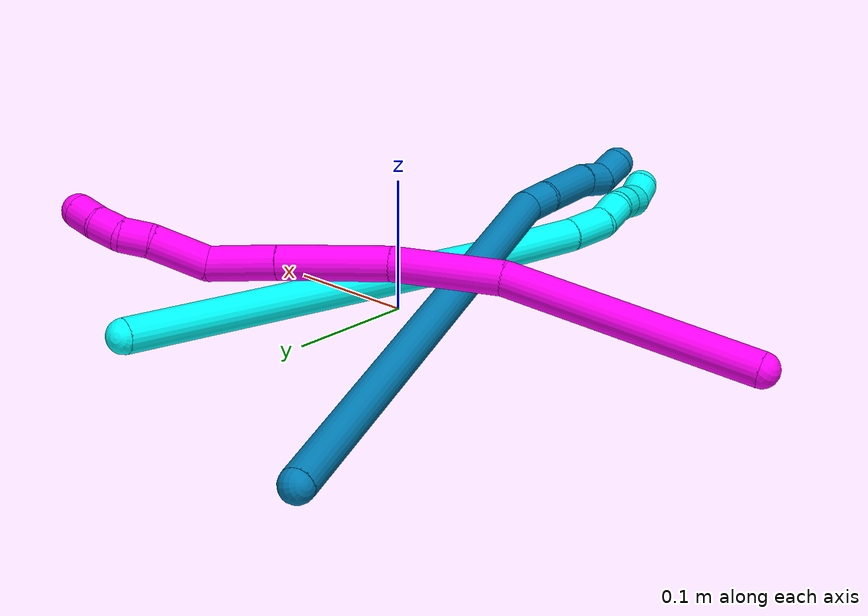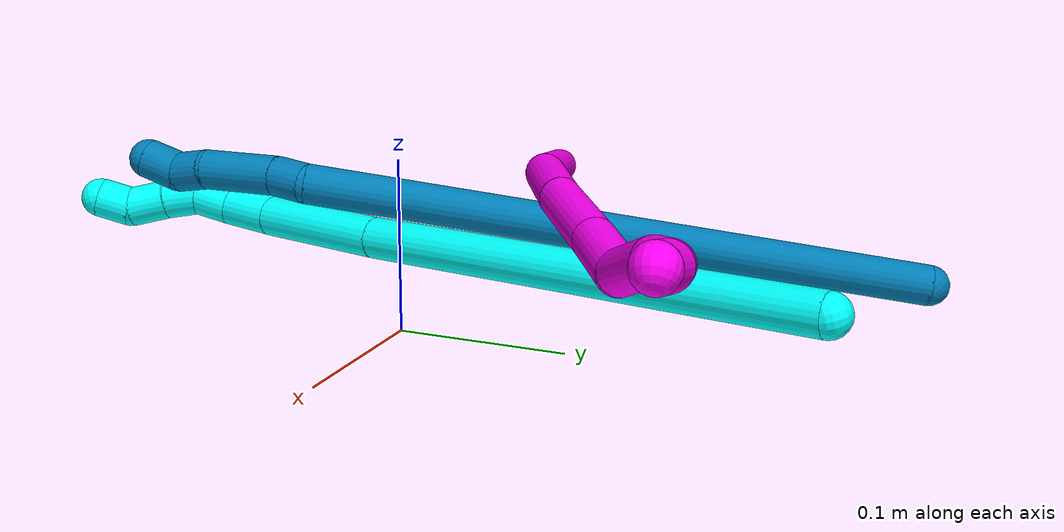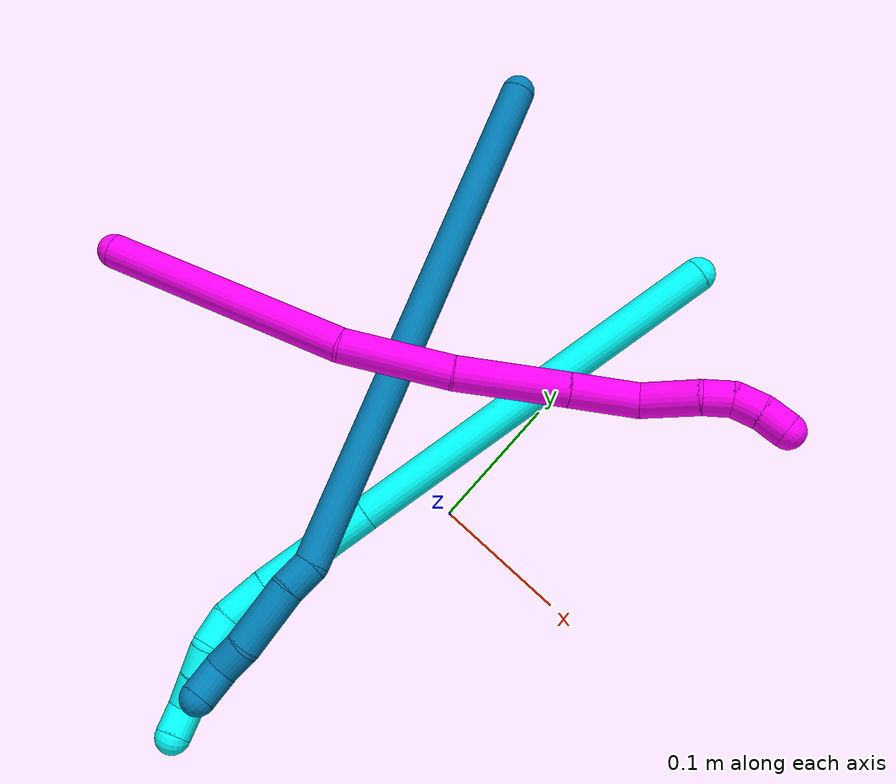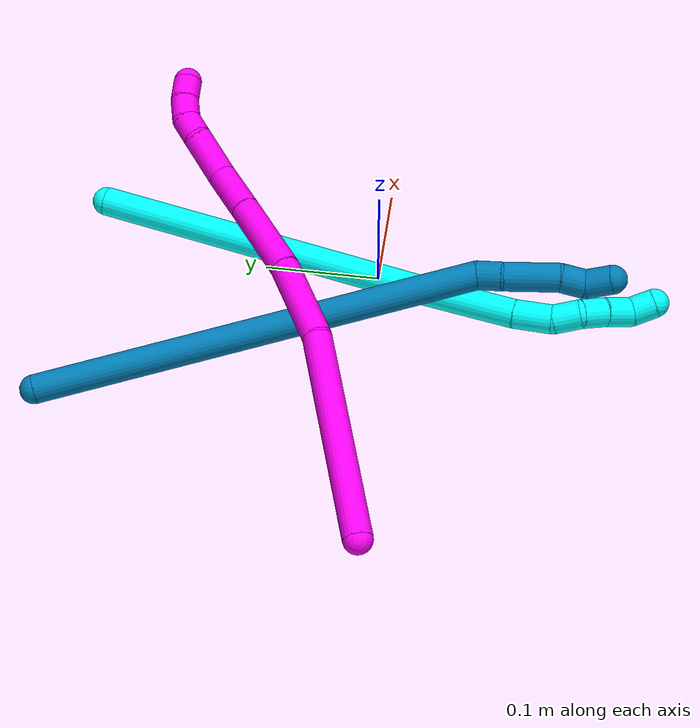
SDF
<sdf version="1.7">
 <world name="default">
  <model name="photoneo_s_sensor">
   <static>1</static>
   <pose>0 0 2 1.57079 1.57079 3.14159</pose>
   <link name="link">
    <inertial><mass>0.1</mass></inertial>
    <sensor name="sensor" type="depth">
     <update_rate>30</update_rate>
     <camera>
      <horizontal_fov>1.22</horizontal_fov>
      <image><width>1920</width><height>1200</height><format>B8G8R8</format></image>
      <clip><near>0.1</near><far>2</far></clip>
      <depth_camera><output>points</output></depth_camera>
     </camera>
     <plugin name="camera_plugin" filename="libgazebo_ros_depth_camera.so">
      <baseline>0.2</baseline>
      <alwaysOn>1</alwaysOn>
      <updateRate>0.0</updateRate>
      <cameraName>camera_ir</cameraName>
      <imageTopicName>/camera/color/image_raw</imageTopicName>
      <cameraInfoTopicName>/camera/color/camera_info</cameraInfoTopicName>
      <depthImageTopicName>/camera/depth/image_raw</depthImageTopicName>
      <depthImageCameraInfoTopicName>/camera/depth/camera_info</depthImageCameraInfoTopicName>
      <pointCloudTopicName>/camera/depth/points</pointCloudTopicName>
      <frameName>fr_optical</frameName>
      <pointCloudCutoff>0.1</pointCloudCutoff>
      <pointCloudCutoffMax>2.0</pointCloudCutoffMax>
      <distortionK1>0</distortionK1>
      <distortionK2>0</distortionK2>
      <distortionK3>0</distortionK3>
      <distortionT1>0</distortionT1>
      <distortionT2>0</distortionT2>
      <CxPrime>0</CxPrime>
      <Cx>0</Cx>
      <Cy>0</Cy>
      <focalLength>0</focalLength>
      <hackBaseline>0</hackBaseline>
     </plugin>
    </sensor>
   </link>
  </model>
  <model name="bin">
   <static>1</static>
   <link name="bottom">
    <collision name="collision-bottom">
     <pose>0 0 -0.01 0 -0 0</pose>
     <geometry><box><size>0.8 0.6 0.02</size></box></geometry>
     <surface>
      <friction><ode><mu>100</mu><mu2>100</mu2></ode></friction>
      <contact><collide_bitmask>65535</collide_bitmask></contact>
     </surface>
    </collision>
   </link>
   <link name="west_wall">
    <collision name="collision-west_wall">
     <pose>-0.41 0 0.1 0 -0 0</pose>
     <geometry><box><size>0.02 0.6 0.2</size></box></geometry>
     <surface>
      <friction><ode><mu>100</mu><mu2>100</mu2></ode></friction>
      <contact><collide_bitmask>65535</collide_bitmask></contact>
     </surface>
    </collision>
   </link>
   <link name="east_wall">
    <collision name="collision-east_wall">
     <pose>0.41 0 0.1 0 -0 0</pose>
     <geometry><box><size>0.02 0.6 0.2</size></box></geometry>
     <surface>
      <friction><ode><mu>100</mu><mu2>100</mu2></ode></friction>
      <contact><collide_bitmask>65535</collide_bitmask></contact>
     </surface>
    </collision>
   </link>
   <link name="south_wall">
    <collision name="collision-south_wall">
     <pose>0 -0.31 0.1 0 -0 0</pose>
     <geometry><box><size>0.8 0.02 0.2</size></box></geometry>
     <surface>
      <friction><ode><mu>100</mu><mu2>100</mu2></ode></friction>
      <contact><collide_bitmask>65535</collide_bitmask></contact>
     </surface>
    </collision>
   </link>
   <link name="north_wall">
    <collision name="collision-north_wall">
     <pose>0 0.31 0.1 0 -0 0</pose>
     <geometry><box><size>0.8 0.02 0.2</size></box></geometry>
     <surface>
      <friction><ode><mu>100</mu><mu2>100</mu2></ode></friction>
      <contact><collide_bitmask>65535</collide_bitmask></contact>
     </surface>
    </collision>
   </link>
  </model>
  <model name="3">
   <static>0</static>
   <link name="3">
    <collision name="collision-cylinder-e_1_1_4">
     <pose>-0.023405 -0.08743 -0.113588 2.48559 -0.161854 -0.467945</pose>
     <geometry><cylinder><radius>0.0125</radius><length>0.290475</length></cylinder></geometry>
     <surface>
      <friction><ode><mu>1.16</mu><mu2>1.16</mu2><slip1>0</slip1><slip2>0</slip2></ode></friction>
      <contact><ode><kp>1e+06</kp><kd>1</kd><max_vel>0</max_vel><min_depth>0.001</min_depth></ode></contact>
     </surface>
    </collision>
    <visual name="visual-cylinder-e_1_1_4">
     <pose>-0.023405 -0.08743 -0.113588 2.48559 -0.161854 -0.467945</pose>
     <geometry><cylinder><radius>0.0125</radius><length>0.290475</length></cylinder></geometry>
     <material><ambient>0.003922 1 0.996078 1</ambient></material>
    </visual>
    <collision name="collision-cylinder-e_2_4_5">
     <pose>-0.05247 -0.201337 -0.260345 2.46792 -0.13259 -0.374742</pose>
     <geometry><cylinder><radius>0.0125</radius><length>0.085634</length></cylinder></geometry>
     <surface>
      <friction><ode><mu>1.16</mu><mu2>1.16</mu2><slip1>0</slip1><slip2>0</slip2></ode></friction>
      <contact><ode><kp>1e+06</kp><kd>1</kd><max_vel>0</max_vel><min_depth>0.001</min_depth></ode></contact>
     </surface>
    </collision>
    <visual name="visual-cylinder-e_2_4_5">
     <pose>-0.05247 -0.201337 -0.260345 2.46792 -0.13259 -0.374742</pose>
     <geometry><cylinder><radius>0.0125</radius><length>0.085634</length></cylinder></geometry>
     <material><ambient>0.003922 1 0.996078 1</ambient></material>
    </visual>
    <collision name="collision-cylinder-e_3_5_6">
     <pose>-0.058652 -0.237866 -0.306812 2.49434 -0.031261 -0.093141</pose>
     <geometry><cylinder><radius>0.0125</radius><length>0.033354</length></cylinder></geometry>
     <surface>
      <friction><ode><mu>1.16</mu><mu2>1.16</mu2><slip1>0</slip1><slip2>0</slip2></ode></friction>
      <contact><ode><kp>1e+06</kp><kd>1</kd><max_vel>0</max_vel><min_depth>0.001</min_depth></ode></contact>
     </surface>
    </collision>
    <visual name="visual-cylinder-e_3_5_6">
     <pose>-0.058652 -0.237866 -0.306812 2.49434 -0.031261 -0.093141</pose>
     <geometry><cylinder><radius>0.0125</radius><length>0.033354</length></cylinder></geometry>
     <material><ambient>0.003922 1 0.996078 1</ambient></material>
    </visual>
    <collision name="collision-cylinder-e_4_6_7">
     <pose>-0.055808 -0.253355 -0.330146 2.64508 0.286675 1.03518</pose>
     <geometry><cylinder><radius>0.0125</radius><length>0.023803</length></cylinder></geometry>
     <surface>
      <friction><ode><mu>1.16</mu><mu2>1.16</mu2><slip1>0</slip1><slip2>0</slip2></ode></friction>
      <contact><ode><kp>1e+06</kp><kd>1</kd><max_vel>0</max_vel><min_depth>0.001</min_depth></ode></contact>
     </surface>
    </collision>
    <visual name="visual-cylinder-e_4_6_7">
     <pose>-0.055808 -0.253355 -0.330146 2.64508 0.286675 1.03518</pose>
     <geometry><cylinder><radius>0.0125</radius><length>0.023803</length></cylinder></geometry>
     <material><ambient>0.003922 1 0.996078 1</ambient></material>
    </visual>
    <collision name="collision-cylinder-e_5_7_8">
     <pose>-0.05172 -0.259961 -0.350797 3.032 0.067494 1.10347</pose>
     <geometry><cylinder><radius>0.0125</radius><length>0.021404</length></cylinder></geometry>
     <surface>
      <friction><ode><mu>1.16</mu><mu2>1.16</mu2><slip1>0</slip1><slip2>0</slip2></ode></friction>
      <contact><ode><kp>1e+06</kp><kd>1</kd><max_vel>0</max_vel><min_depth>0.001</min_depth></ode></contact>
     </surface>
    </collision>
    <visual name="visual-cylinder-e_5_7_8">
     <pose>-0.05172 -0.259961 -0.350797 3.032 0.067494 1.10347</pose>
     <geometry><cylinder><radius>0.0125</radius><length>0.021404</length></cylinder></geometry>
     <material><ambient>0.003922 1 0.996078 1</ambient></material>
    </visual>
    <collision name="collision-cylinder-e_6_8_9">
     <pose>-0.051099 -0.262057 -0.3735 3.06495 -0.008308 -0.215844</pose>
     <geometry><cylinder><radius>0.0125</radius><length>0.024252</length></cylinder></geometry>
     <surface>
      <friction><ode><mu>1.16</mu><mu2>1.16</mu2><slip1>0</slip1><slip2>0</slip2></ode></friction>
      <contact><ode><kp>1e+06</kp><kd>1</kd><max_vel>0</max_vel><min_depth>0.001</min_depth></ode></contact>
     </surface>
    </collision>
    <visual name="visual-cylinder-e_6_8_9">
     <pose>-0.051099 -0.262057 -0.3735 3.06495 -0.008308 -0.215844</pose>
     <geometry><cylinder><radius>0.0125</radius><length>0.024252</length></cylinder></geometry>
     <material><ambient>0.003922 1 0.996078 1</ambient></material>
    </visual>
    <collision name="collision-cylinder-e_7_9_2">
     <pose>-0.046868 -0.266534 -0.394518 2.76324 0.423628 1.68666</pose>
     <geometry><cylinder><radius>0.0125</radius><length>0.021079</length></cylinder></geometry>
     <surface>
      <friction><ode><mu>1.16</mu><mu2>1.16</mu2><slip1>0</slip1><slip2>0</slip2></ode></friction>
      <contact><ode><kp>1e+06</kp><kd>1</kd><max_vel>0</max_vel><min_depth>0.001</min_depth></ode></contact>
     </surface>
    </collision>
    <visual name="visual-cylinder-e_7_9_2">
     <pose>-0.046868 -0.266534 -0.394518 2.76324 0.423628 1.68666</pose>
     <geometry><cylinder><radius>0.0125</radius><length>0.021079</length></cylinder></geometry>
     <material><ambient>0.003922 1 0.996078 1</ambient></material>
    </visual>
    <collision name="collision-sphere-2">
     <pose>-0.042535 -0.270083 -0.403447 0 -0 0</pose>
     <geometry><sphere><radius>0.0125</radius></sphere></geometry>
     <surface>
      <friction><ode><mu>1.16</mu><mu2>1.16</mu2><slip1>0</slip1><slip2>0</slip2></ode></friction>
      <contact><ode><kp>1e+06</kp><kd>1</kd><max_vel>0</max_vel><min_depth>0.001</min_depth></ode></contact>
     </surface>
    </collision>
    <visual name="visual-sphere-2">
     <pose>-0.042535 -0.270083 -0.403447 0 -0 0</pose>
     <geometry><sphere><radius>0.0125</radius></sphere></geometry>
     <material><ambient>0.003922 1 0.996078 1</ambient></material>
    </visual>
    <collision name="collision-sphere-9">
     <pose>-0.0512 -0.262985 -0.38559 0 -0 0</pose>
     <geometry><sphere><radius>0.0125</radius></sphere></geometry>
     <surface>
      <friction><ode><mu>1.16</mu><mu2>1.16</mu2><slip1>0</slip1><slip2>0</slip2></ode></friction>
      <contact><ode><kp>1e+06</kp><kd>1</kd><max_vel>0</max_vel><min_depth>0.001</min_depth></ode></contact>
     </surface>
    </collision>
    <visual name="visual-sphere-9">
     <pose>-0.0512 -0.262985 -0.38559 0 -0 0</pose>
     <geometry><sphere><radius>0.0125</radius></sphere></geometry>
     <material><ambient>0.003922 1 0.996078 1</ambient></material>
    </visual>
    <collision name="collision-sphere-4">
     <pose>-0.046809 -0.17486 -0.227175 0 -0 0</pose>
     <geometry><sphere><radius>0.0125</radius></sphere></geometry>
     <surface>
      <friction><ode><mu>1.16</mu><mu2>1.16</mu2><slip1>0</slip1><slip2>0</slip2></ode></friction>
      <contact><ode><kp>1e+06</kp><kd>1</kd><max_vel>0</max_vel><min_depth>0.001</min_depth></ode></contact>
     </surface>
    </collision>
    <visual name="visual-sphere-4">
     <pose>-0.046809 -0.17486 -0.227175 0 -0 0</pose>
     <geometry><sphere><radius>0.0125</radius></sphere></geometry>
     <material><ambient>0.003922 1 0.996078 1</ambient></material>
    </visual>
    <collision name="collision-sphere-1">
     <geometry><sphere><radius>0.0125</radius></sphere></geometry>
     <surface>
      <friction><ode><mu>1.16</mu><mu2>1.16</mu2><slip1>0</slip1><slip2>0</slip2></ode></friction>
      <contact><ode><kp>1e+06</kp><kd>1</kd><max_vel>0</max_vel><min_depth>0.001</min_depth></ode></contact>
     </surface>
    </collision>
    <visual name="visual-sphere-1">
     <geometry><sphere><radius>0.0125</radius></sphere></geometry>
     <material><ambient>0.003922 1 0.996078 1</ambient></material>
    </visual>
    <collision name="collision-sphere-8">
     <pose>-0.050999 -0.261129 -0.361411 0 -0 0</pose>
     <geometry><sphere><radius>0.0125</radius></sphere></geometry>
     <surface>
      <friction><ode><mu>1.16</mu><mu2>1.16</mu2><slip1>0</slip1><slip2>0</slip2></ode></friction>
      <contact><ode><kp>1e+06</kp><kd>1</kd><max_vel>0</max_vel><min_depth>0.001</min_depth></ode></contact>
     </surface>
    </collision>
    <visual name="visual-sphere-8">
     <pose>-0.050999 -0.261129 -0.361411 0 -0 0</pose>
     <geometry><sphere><radius>0.0125</radius></sphere></geometry>
     <material><ambient>0.003922 1 0.996078 1</ambient></material>
    </visual>
    <collision name="collision-sphere-5">
     <pose>-0.05813 -0.227814 -0.293514 0 -0 0</pose>
     <geometry><sphere><radius>0.0125</radius></sphere></geometry>
     <surface>
      <friction><ode><mu>1.16</mu><mu2>1.16</mu2><slip1>0</slip1><slip2>0</slip2></ode></friction>
      <contact><ode><kp>1e+06</kp><kd>1</kd><max_vel>0</max_vel><min_depth>0.001</min_depth></ode></contact>
     </surface>
    </collision>
    <visual name="visual-sphere-5">
     <pose>-0.05813 -0.227814 -0.293514 0 -0 0</pose>
     <geometry><sphere><radius>0.0125</radius></sphere></geometry>
     <material><ambient>0.003922 1 0.996078 1</ambient></material>
    </visual>
    <collision name="collision-sphere-6">
     <pose>-0.059173 -0.247917 -0.320109 0 -0 0</pose>
     <geometry><sphere><radius>0.0125</radius></sphere></geometry>
     <surface>
      <friction><ode><mu>1.16</mu><mu2>1.16</mu2><slip1>0</slip1><slip2>0</slip2></ode></friction>
      <contact><ode><kp>1e+06</kp><kd>1</kd><max_vel>0</max_vel><min_depth>0.001</min_depth></ode></contact>
     </surface>
    </collision>
    <visual name="visual-sphere-6">
     <pose>-0.059173 -0.247917 -0.320109 0 -0 0</pose>
     <geometry><sphere><radius>0.0125</radius></sphere></geometry>
     <material><ambient>0.003922 1 0.996078 1</ambient></material>
    </visual>
    <collision name="collision-sphere-7">
     <pose>-0.052442 -0.258793 -0.340184 0 -0 0</pose>
     <geometry><sphere><radius>0.0125</radius></sphere></geometry>
     <surface>
      <friction><ode><mu>1.16</mu><mu2>1.16</mu2><slip1>0</slip1><slip2>0</slip2></ode></friction>
      <contact><ode><kp>1e+06</kp><kd>1</kd><max_vel>0</max_vel><min_depth>0.001</min_depth></ode></contact>
     </surface>
    </collision>
    <visual name="visual-sphere-7">
     <pose>-0.052442 -0.258793 -0.340184 0 -0 0</pose>
     <geometry><sphere><radius>0.0125</radius></sphere></geometry>
     <material><ambient>0.003922 1 0.996078 1</ambient></material>
    </visual>
    <inertial>
     <pose>-0.035821 -0.148279 -0.196526 0 -0 0</pose>
     <mass>0.5</mass>
     <inertia>
      <ixx>0.000934</ixx>
      <ixy>0</ixy>
      <ixz>0</ixz>
      <iyy>-0.002359</iyy>
      <iyz>0</iyz>
      <izz>0.001581</izz>
     </inertia>
    </inertial>
   </link>
   <pose>0.018347 0.244225 0.046285 -1.1067 -0.946441 0.034007</pose>
  </model>
  <model name="9">
   <static>0</static>
   <link name="9">
    <collision name="collision-cylinder-e_1_1_4">
     <pose>0.122201 -0.128076 -0.074864 2.09976 0.689042 1.11775</pose>
     <geometry><cylinder><radius>0.0125</radius><length>0.384401</length></cylinder></geometry>
     <surface>
      <friction><ode><mu>1.16</mu><mu2>1.16</mu2><slip1>0</slip1><slip2>0</slip2></ode></friction>
      <contact><ode><kp>1e+06</kp><kd>1</kd><max_vel>0</max_vel><min_depth>0.001</min_depth></ode></contact>
     </surface>
    </collision>
    <visual name="visual-cylinder-e_1_1_4">
     <pose>0.122201 -0.128076 -0.074864 2.09976 0.689042 1.11775</pose>
     <geometry><cylinder><radius>0.0125</radius><length>0.384401</length></cylinder></geometry>
     <material><ambient>0 0.490196 0.709804 1</ambient></material>
    </visual>
    <collision name="collision-cylinder-e_2_4_5">
     <pose>0.250375 -0.265472 -0.150407 1.64351 0.568769 0.609185</pose>
     <geometry><cylinder><radius>0.0125</radius><length>0.022181</length></cylinder></geometry>
     <surface>
      <friction><ode><mu>1.16</mu><mu2>1.16</mu2><slip1>0</slip1><slip2>0</slip2></ode></friction>
      <contact><ode><kp>1e+06</kp><kd>1</kd><max_vel>0</max_vel><min_depth>0.001</min_depth></ode></contact>
     </surface>
    </collision>
    <visual name="visual-cylinder-e_2_4_5">
     <pose>0.250375 -0.265472 -0.150407 1.64351 0.568769 0.609185</pose>
     <geometry><cylinder><radius>0.0125</radius><length>0.022181</length></cylinder></geometry>
     <material><ambient>0 0.490196 0.709804 1</ambient></material>
    </visual>
    <collision name="collision-cylinder-e_3_5_6">
     <pose>0.268061 -0.29498 -0.156627 1.83868 0.510082 0.658921</pose>
     <geometry><cylinder><radius>0.0125</radius><length>0.047978</length></cylinder></geometry>
     <surface>
      <friction><ode><mu>1.16</mu><mu2>1.16</mu2><slip1>0</slip1><slip2>0</slip2></ode></friction>
      <contact><ode><kp>1e+06</kp><kd>1</kd><max_vel>0</max_vel><min_depth>0.001</min_depth></ode></contact>
     </surface>
    </collision>
    <visual name="visual-cylinder-e_3_5_6">
     <pose>0.268061 -0.29498 -0.156627 1.83868 0.510082 0.658921</pose>
     <geometry><cylinder><radius>0.0125</radius><length>0.047978</length></cylinder></geometry>
     <material><ambient>0 0.490196 0.709804 1</ambient></material>
    </visual>
    <collision name="collision-cylinder-e_4_6_7">
     <pose>0.282874 -0.325543 -0.164057 1.7509 0.285999 0.341764</pose>
     <geometry><cylinder><radius>0.0125</radius><length>0.021984</length></cylinder></geometry>
     <surface>
      <friction><ode><mu>1.16</mu><mu2>1.16</mu2><slip1>0</slip1><slip2>0</slip2></ode></friction>
      <contact><ode><kp>1e+06</kp><kd>1</kd><max_vel>0</max_vel><min_depth>0.001</min_depth></ode></contact>
     </surface>
    </collision>
    <visual name="visual-cylinder-e_4_6_7">
     <pose>0.282874 -0.325543 -0.164057 1.7509 0.285999 0.341764</pose>
     <geometry><cylinder><radius>0.0125</radius><length>0.021984</length></cylinder></geometry>
     <material><ambient>0 0.490196 0.709804 1</ambient></material>
    </visual>
    <collision name="collision-cylinder-e_5_7_2">
     <pose>0.294256 -0.344136 -0.167148 1.71607 0.783931 0.89216</pose>
     <geometry><cylinder><radius>0.0125</radius><length>0.023456</length></cylinder></geometry>
     <surface>
      <friction><ode><mu>1.16</mu><mu2>1.16</mu2><slip1>0</slip1><slip2>0</slip2></ode></friction>
      <contact><ode><kp>1e+06</kp><kd>1</kd><max_vel>0</max_vel><min_depth>0.001</min_depth></ode></contact>
     </surface>
    </collision>
    <visual name="visual-cylinder-e_5_7_2">
     <pose>0.294256 -0.344136 -0.167148 1.71607 0.783931 0.89216</pose>
     <geometry><cylinder><radius>0.0125</radius><length>0.023456</length></cylinder></geometry>
     <material><ambient>0 0.490196 0.709804 1</ambient></material>
    </visual>
    <collision name="collision-sphere-2">
     <pose>0.302537 -0.352354 -0.168351 0 -0 0</pose>
     <geometry><sphere><radius>0.0125</radius></sphere></geometry>
     <surface>
      <friction><ode><mu>1.16</mu><mu2>1.16</mu2><slip1>0</slip1><slip2>0</slip2></ode></friction>
      <contact><ode><kp>1e+06</kp><kd>1</kd><max_vel>0</max_vel><min_depth>0.001</min_depth></ode></contact>
     </surface>
    </collision>
    <visual name="visual-sphere-2">
     <pose>0.302537 -0.352354 -0.168351 0 -0 0</pose>
     <geometry><sphere><radius>0.0125</radius></sphere></geometry>
     <material><ambient>0 0.490196 0.709804 1</ambient></material>
    </visual>
    <collision name="collision-sphere-7">
     <pose>0.285975 -0.335918 -0.165946 0 -0 0</pose>
     <geometry><sphere><radius>0.0125</radius></sphere></geometry>
     <surface>
      <friction><ode><mu>1.16</mu><mu2>1.16</mu2><slip1>0</slip1><slip2>0</slip2></ode></friction>
      <contact><ode><kp>1e+06</kp><kd>1</kd><max_vel>0</max_vel><min_depth>0.001</min_depth></ode></contact>
     </surface>
    </collision>
    <visual name="visual-sphere-7">
     <pose>0.285975 -0.335918 -0.165946 0 -0 0</pose>
     <geometry><sphere><radius>0.0125</radius></sphere></geometry>
     <material><ambient>0 0.490196 0.709804 1</ambient></material>
    </visual>
    <collision name="collision-sphere-6">
     <pose>0.279773 -0.315168 -0.162168 0 -0 0</pose>
     <geometry><sphere><radius>0.0125</radius></sphere></geometry>
     <surface>
      <friction><ode><mu>1.16</mu><mu2>1.16</mu2><slip1>0</slip1><slip2>0</slip2></ode></friction>
      <contact><ode><kp>1e+06</kp><kd>1</kd><max_vel>0</max_vel><min_depth>0.001</min_depth></ode></contact>
     </surface>
    </collision>
    <visual name="visual-sphere-6">
     <pose>0.279773 -0.315168 -0.162168 0 -0 0</pose>
     <geometry><sphere><radius>0.0125</radius></sphere></geometry>
     <material><ambient>0 0.490196 0.709804 1</ambient></material>
    </visual>
    <collision name="collision-sphere-5">
     <pose>0.256348 -0.274791 -0.151085 0 -0 0</pose>
     <geometry><sphere><radius>0.0125</radius></sphere></geometry>
     <surface>
      <friction><ode><mu>1.16</mu><mu2>1.16</mu2><slip1>0</slip1><slip2>0</slip2></ode></friction>
      <contact><ode><kp>1e+06</kp><kd>1</kd><max_vel>0</max_vel><min_depth>0.001</min_depth></ode></contact>
     </surface>
    </collision>
    <visual name="visual-sphere-5">
     <pose>0.256348 -0.274791 -0.151085 0 -0 0</pose>
     <geometry><sphere><radius>0.0125</radius></sphere></geometry>
     <material><ambient>0 0.490196 0.709804 1</ambient></material>
    </visual>
    <collision name="collision-sphere-1">
     <geometry><sphere><radius>0.0125</radius></sphere></geometry>
     <surface>
      <friction><ode><mu>1.16</mu><mu2>1.16</mu2><slip1>0</slip1><slip2>0</slip2></ode></friction>
      <contact><ode><kp>1e+06</kp><kd>1</kd><max_vel>0</max_vel><min_depth>0.001</min_depth></ode></contact>
     </surface>
    </collision>
    <visual name="visual-sphere-1">
     <geometry><sphere><radius>0.0125</radius></sphere></geometry>
     <material><ambient>0 0.490196 0.709804 1</ambient></material>
    </visual>
    <collision name="collision-sphere-4">
     <pose>0.244401 -0.256152 -0.149728 0 -0 0</pose>
     <geometry><sphere><radius>0.0125</radius></sphere></geometry>
     <surface>
      <friction><ode><mu>1.16</mu><mu2>1.16</mu2><slip1>0</slip1><slip2>0</slip2></ode></friction>
      <contact><ode><kp>1e+06</kp><kd>1</kd><max_vel>0</max_vel><min_depth>0.001</min_depth></ode></contact>
     </surface>
    </collision>
    <visual name="visual-sphere-4">
     <pose>0.244401 -0.256152 -0.149728 0 -0 0</pose>
     <geometry><sphere><radius>0.0125</radius></sphere></geometry>
     <material><ambient>0 0.490196 0.709804 1</ambient></material>
    </visual>
    <inertial>
     <pose>0.157019 -0.169005 -0.094312 0 -0 0</pose>
     <mass>0.5</mass>
     <inertia>
      <ixx>0.004943</ixx>
      <ixy>0</ixy>
      <ixz>0</ixz>
      <iyy>0.004573</iyy>
      <iyz>0</iyz>
      <izz>0.000138</izz>
     </inertia>
    </inertial>
   </link>
   <pose>-0.172684 0.270054 0.011469 0.776078 -1.01673 -1.02701</pose>
  </model>
  <model name="10">
   <static>0</static>
   <link name="10">
    <collision name="collision-cylinder-e_1_1_4">
     <pose>0.04362 0.069305 0.04344 -1.0109 0.489927 -0.274937</pose>
     <geometry><cylinder><radius>0.0125</radius><length>0.185396</length></cylinder></geometry>
     <surface>
      <friction><ode><mu>1.16</mu><mu2>1.16</mu2><slip1>0</slip1><slip2>0</slip2></ode></friction>
      <contact><ode><kp>1e+06</kp><kd>1</kd><max_vel>0</max_vel><min_depth>0.001</min_depth></ode></contact>
     </surface>
    </collision>
    <visual name="visual-cylinder-e_1_1_4">
     <pose>0.04362 0.069305 0.04344 -1.0109 0.489927 -0.274937</pose>
     <geometry><cylinder><radius>0.0125</radius><length>0.185396</length></cylinder></geometry>
     <material><ambient>1 0 0.964706 1</ambient></material>
    </visual>
    <collision name="collision-cylinder-e_2_4_5">
     <pose>0.110718 0.161683 0.109513 -0.795064 0.628224 -0.271142</pose>
     <geometry><cylinder><radius>0.0125</radius><length>0.079895</length></cylinder></geometry>
     <surface>
      <friction><ode><mu>1.16</mu><mu2>1.16</mu2><slip1>0</slip1><slip2>0</slip2></ode></friction>
      <contact><ode><kp>1e+06</kp><kd>1</kd><max_vel>0</max_vel><min_depth>0.001</min_depth></ode></contact>
     </surface>
    </collision>
    <visual name="visual-cylinder-e_2_4_5">
     <pose>0.110718 0.161683 0.109513 -0.795064 0.628224 -0.271142</pose>
     <geometry><cylinder><radius>0.0125</radius><length>0.079895</length></cylinder></geometry>
     <material><ambient>1 0 0.964706 1</ambient></material>
    </visual>
    <collision name="collision-cylinder-e_3_5_6">
     <pose>0.160139 0.203387 0.156236 -0.658263 0.705575 -0.250201</pose>
     <geometry><cylinder><radius>0.0125</radius><length>0.080013</length></cylinder></geometry>
     <surface>
      <friction><ode><mu>1.16</mu><mu2>1.16</mu2><slip1>0</slip1><slip2>0</slip2></ode></friction>
      <contact><ode><kp>1e+06</kp><kd>1</kd><max_vel>0</max_vel><min_depth>0.001</min_depth></ode></contact>
     </surface>
    </collision>
    <visual name="visual-cylinder-e_3_5_6">
     <pose>0.160139 0.203387 0.156236 -0.658263 0.705575 -0.250201</pose>
     <geometry><cylinder><radius>0.0125</radius><length>0.080013</length></cylinder></geometry>
     <material><ambient>1 0 0.964706 1</ambient></material>
    </visual>
    <collision name="collision-cylinder-e_4_6_7">
     <pose>0.20206 0.233213 0.196007 -0.620071 0.692385 -0.230104</pose>
     <geometry><cylinder><radius>0.0125</radius><length>0.050058</length></cylinder></geometry>
     <surface>
      <friction><ode><mu>1.16</mu><mu2>1.16</mu2><slip1>0</slip1><slip2>0</slip2></ode></friction>
      <contact><ode><kp>1e+06</kp><kd>1</kd><max_vel>0</max_vel><min_depth>0.001</min_depth></ode></contact>
     </surface>
    </collision>
    <visual name="visual-cylinder-e_4_6_7">
     <pose>0.20206 0.233213 0.196007 -0.620071 0.692385 -0.230104</pose>
     <geometry><cylinder><radius>0.0125</radius><length>0.050058</length></cylinder></geometry>
     <material><ambient>1 0 0.964706 1</ambient></material>
    </visual>
    <collision name="collision-cylinder-e_5_7_8">
     <pose>0.234897 0.257117 0.215349 -1.29014 0.905573 -0.70183</pose>
     <geometry><cylinder><radius>0.0125</radius><length>0.042857</length></cylinder></geometry>
     <surface>
      <friction><ode><mu>1.16</mu><mu2>1.16</mu2><slip1>0</slip1><slip2>0</slip2></ode></friction>
      <contact><ode><kp>1e+06</kp><kd>1</kd><max_vel>0</max_vel><min_depth>0.001</min_depth></ode></contact>
     </surface>
    </collision>
    <visual name="visual-cylinder-e_5_7_8">
     <pose>0.234897 0.257117 0.215349 -1.29014 0.905573 -0.70183</pose>
     <geometry><cylinder><radius>0.0125</radius><length>0.042857</length></cylinder></geometry>
     <material><ambient>1 0 0.964706 1</ambient></material>
    </visual>
    <collision name="collision-cylinder-e_6_8_9">
     <pose>0.259384 0.275666 0.223195 -0.949432 0.81535 -0.436806</pose>
     <geometry><cylinder><radius>0.0125</radius><length>0.020955</length></cylinder></geometry>
     <surface>
      <friction><ode><mu>1.16</mu><mu2>1.16</mu2><slip1>0</slip1><slip2>0</slip2></ode></friction>
      <contact><ode><kp>1e+06</kp><kd>1</kd><max_vel>0</max_vel><min_depth>0.001</min_depth></ode></contact>
     </surface>
    </collision>
    <visual name="visual-cylinder-e_6_8_9">
     <pose>0.259384 0.275666 0.223195 -0.949432 0.81535 -0.436806</pose>
     <geometry><cylinder><radius>0.0125</radius><length>0.020955</length></cylinder></geometry>
     <material><ambient>1 0 0.964706 1</ambient></material>
    </visual>
    <collision name="collision-cylinder-e_7_9_10">
     <pose>0.271312 0.289829 0.231677 -1.09379 0.430446 -0.264641</pose>
     <geometry><cylinder><radius>0.0125</radius><length>0.020616</length></cylinder></geometry>
     <surface>
      <friction><ode><mu>1.16</mu><mu2>1.16</mu2><slip1>0</slip1><slip2>0</slip2></ode></friction>
      <contact><ode><kp>1e+06</kp><kd>1</kd><max_vel>0</max_vel><min_depth>0.001</min_depth></ode></contact>
     </surface>
    </collision>
    <visual name="visual-cylinder-e_7_9_10">
     <pose>0.271312 0.289829 0.231677 -1.09379 0.430446 -0.264641</pose>
     <geometry><cylinder><radius>0.0125</radius><length>0.020616</length></cylinder></geometry>
     <material><ambient>1 0 0.964706 1</ambient></material>
    </visual>
    <collision name="collision-cylinder-e_8_10_2">
     <pose>0.277792 0.306921 0.2405 -1.09475 0.217311 -0.132779</pose>
     <geometry><cylinder><radius>0.0125</radius><length>0.020209</length></cylinder></geometry>
     <surface>
      <friction><ode><mu>1.16</mu><mu2>1.16</mu2><slip1>0</slip1><slip2>0</slip2></ode></friction>
      <contact><ode><kp>1e+06</kp><kd>1</kd><max_vel>0</max_vel><min_depth>0.001</min_depth></ode></contact>
     </surface>
    </collision>
    <visual name="visual-cylinder-e_8_10_2">
     <pose>0.277792 0.306921 0.2405 -1.09475 0.217311 -0.132779</pose>
     <geometry><cylinder><radius>0.0125</radius><length>0.020209</length></cylinder></geometry>
     <material><ambient>1 0 0.964706 1</ambient></material>
    </visual>
    <collision name="collision-sphere-2">
     <pose>0.279971 0.315691 0.245022 0 -0 0</pose>
     <geometry><sphere><radius>0.0125</radius></sphere></geometry>
     <surface>
      <friction><ode><mu>1.16</mu><mu2>1.16</mu2><slip1>0</slip1><slip2>0</slip2></ode></friction>
      <contact><ode><kp>1e+06</kp><kd>1</kd><max_vel>0</max_vel><min_depth>0.001</min_depth></ode></contact>
     </surface>
    </collision>
    <visual name="visual-sphere-2">
     <pose>0.279971 0.315691 0.245022 0 -0 0</pose>
     <geometry><sphere><radius>0.0125</radius></sphere></geometry>
     <material><ambient>1 0 0.964706 1</ambient></material>
    </visual>
    <collision name="collision-sphere-10">
     <pose>0.275614 0.298152 0.235978 0 -0 0</pose>
     <geometry><sphere><radius>0.0125</radius></sphere></geometry>
     <surface>
      <friction><ode><mu>1.16</mu><mu2>1.16</mu2><slip1>0</slip1><slip2>0</slip2></ode></friction>
      <contact><ode><kp>1e+06</kp><kd>1</kd><max_vel>0</max_vel><min_depth>0.001</min_depth></ode></contact>
     </surface>
    </collision>
    <visual name="visual-sphere-10">
     <pose>0.275614 0.298152 0.235978 0 -0 0</pose>
     <geometry><sphere><radius>0.0125</radius></sphere></geometry>
     <material><ambient>1 0 0.964706 1</ambient></material>
    </visual>
    <collision name="collision-sphere-9">
     <pose>0.267011 0.281507 0.227376 0 -0 0</pose>
     <geometry><sphere><radius>0.0125</radius></sphere></geometry>
     <surface>
      <friction><ode><mu>1.16</mu><mu2>1.16</mu2><slip1>0</slip1><slip2>0</slip2></ode></friction>
      <contact><ode><kp>1e+06</kp><kd>1</kd><max_vel>0</max_vel><min_depth>0.001</min_depth></ode></contact>
     </surface>
    </collision>
    <visual name="visual-sphere-9">
     <pose>0.267011 0.281507 0.227376 0 -0 0</pose>
     <geometry><sphere><radius>0.0125</radius></sphere></geometry>
     <material><ambient>1 0 0.964706 1</ambient></material>
    </visual>
    <collision name="collision-sphere-4">
     <pose>0.08724 0.138609 0.086881 0 -0 0</pose>
     <geometry><sphere><radius>0.0125</radius></sphere></geometry>
     <surface>
      <friction><ode><mu>1.16</mu><mu2>1.16</mu2><slip1>0</slip1><slip2>0</slip2></ode></friction>
      <contact><ode><kp>1e+06</kp><kd>1</kd><max_vel>0</max_vel><min_depth>0.001</min_depth></ode></contact>
     </surface>
    </collision>
    <visual name="visual-sphere-4">
     <pose>0.08724 0.138609 0.086881 0 -0 0</pose>
     <geometry><sphere><radius>0.0125</radius></sphere></geometry>
     <material><ambient>1 0 0.964706 1</ambient></material>
    </visual>
    <collision name="collision-sphere-1">
     <geometry><sphere><radius>0.0125</radius></sphere></geometry>
     <surface>
      <friction><ode><mu>1.16</mu><mu2>1.16</mu2><slip1>0</slip1><slip2>0</slip2></ode></friction>
      <contact><ode><kp>1e+06</kp><kd>1</kd><max_vel>0</max_vel><min_depth>0.001</min_depth></ode></contact>
     </surface>
    </collision>
    <visual name="visual-sphere-1">
     <geometry><sphere><radius>0.0125</radius></sphere></geometry>
     <material><ambient>1 0 0.964706 1</ambient></material>
    </visual>
    <collision name="collision-sphere-8">
     <pose>0.251756 0.269825 0.219013 0 -0 0</pose>
     <geometry><sphere><radius>0.0125</radius></sphere></geometry>
     <surface>
      <friction><ode><mu>1.16</mu><mu2>1.16</mu2><slip1>0</slip1><slip2>0</slip2></ode></friction>
      <contact><ode><kp>1e+06</kp><kd>1</kd><max_vel>0</max_vel><min_depth>0.001</min_depth></ode></contact>
     </surface>
    </collision>
    <visual name="visual-sphere-8">
     <pose>0.251756 0.269825 0.219013 0 -0 0</pose>
     <geometry><sphere><radius>0.0125</radius></sphere></geometry>
     <material><ambient>1 0 0.964706 1</ambient></material>
    </visual>
    <collision name="collision-sphere-5">
     <pose>0.134195 0.184757 0.132145 0 -0 0</pose>
     <geometry><sphere><radius>0.0125</radius></sphere></geometry>
     <surface>
      <friction><ode><mu>1.16</mu><mu2>1.16</mu2><slip1>0</slip1><slip2>0</slip2></ode></friction>
      <contact><ode><kp>1e+06</kp><kd>1</kd><max_vel>0</max_vel><min_depth>0.001</min_depth></ode></contact>
     </surface>
    </collision>
    <visual name="visual-sphere-5">
     <pose>0.134195 0.184757 0.132145 0 -0 0</pose>
     <geometry><sphere><radius>0.0125</radius></sphere></geometry>
     <material><ambient>1 0 0.964706 1</ambient></material>
    </visual>
    <collision name="collision-sphere-6">
     <pose>0.186082 0.222018 0.180328 0 -0 0</pose>
     <geometry><sphere><radius>0.0125</radius></sphere></geometry>
     <surface>
      <friction><ode><mu>1.16</mu><mu2>1.16</mu2><slip1>0</slip1><slip2>0</slip2></ode></friction>
      <contact><ode><kp>1e+06</kp><kd>1</kd><max_vel>0</max_vel><min_depth>0.001</min_depth></ode></contact>
     </surface>
    </collision>
    <visual name="visual-sphere-6">
     <pose>0.186082 0.222018 0.180328 0 -0 0</pose>
     <geometry><sphere><radius>0.0125</radius></sphere></geometry>
     <material><ambient>1 0 0.964706 1</ambient></material>
    </visual>
    <collision name="collision-sphere-7">
     <pose>0.218038 0.244408 0.211686 0 -0 0</pose>
     <geometry><sphere><radius>0.0125</radius></sphere></geometry>
     <surface>
      <friction><ode><mu>1.16</mu><mu2>1.16</mu2><slip1>0</slip1><slip2>0</slip2></ode></friction>
      <contact><ode><kp>1e+06</kp><kd>1</kd><max_vel>0</max_vel><min_depth>0.001</min_depth></ode></contact>
     </surface>
    </collision>
    <visual name="visual-sphere-7">
     <pose>0.218038 0.244408 0.211686 0 -0 0</pose>
     <geometry><sphere><radius>0.0125</radius></sphere></geometry>
     <material><ambient>1 0 0.964706 1</ambient></material>
    </visual>
    <inertial>
     <pose>0.133141 0.165376 0.125318 0 -0 0</pose>
     <mass>0.5</mass>
     <inertia>
      <ixx>0.000411</ixx>
      <ixy>0</ixy>
      <ixz>0</ixz>
      <iyy>0.000299</iyy>
      <iyz>0</iyz>
      <izz>-0.000771</izz>
     </inertia>
    </inertial>
   </link>
   <pose>-0.306193 -0.021118 0.034796 2.48753 -0.220031 1.42037</pose>
  </model>
 </world>
</sdf>
